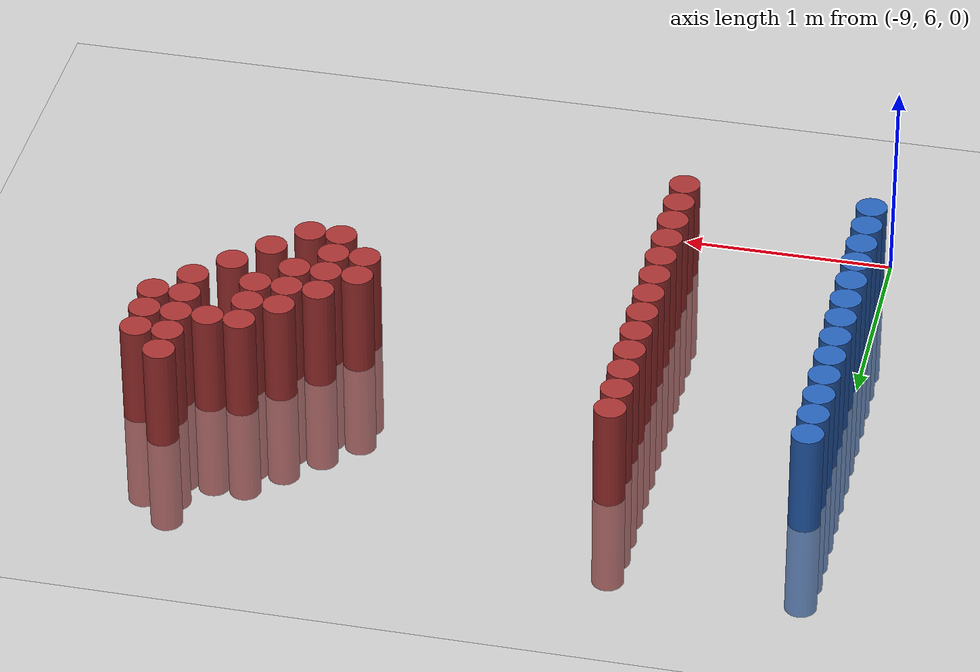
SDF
<sdf version="1.6">
 <world name="default">
  <model name="ground_plane">
   <static>1</static>
   <link name="link">
    <collision name="collision">
     <geometry><plane><normal>0 0 1</normal><size>100 100</size></plane></geometry>
     <surface><friction><ode><mu>100</mu><mu2>50</mu2></ode></friction></surface>
    </collision>
    <visual name="visual">
     <cast_shadows>0</cast_shadows>
     <geometry><plane><normal>0 0 1</normal><size>100 100</size></plane></geometry>
     <material>
      <script><uri>file://media/materials/scripts/gazebo.material</uri><name>Gazebo/Grey</name></script>
     </material>
    </visual>
   </link>
  </model>
  <model name="unit_cylinder_132">
   <static>1</static>
   <pose>-8.925000 6.225000 0.000000 0.000000 0.000000 0.000000</pose>
   <link name="link">
    <inertial>
     <mass>1</mass>
     <inertia><ixx>0.145833</ixx><ixy>0</ixy><ixz>0</ixz><iyy>0.145833</iyy><iyz>0</iyz><izz>0.125</izz></inertia>
    </inertial>
    <collision name="collision">
     <geometry><cylinder><radius>0.075000</radius><length>1</length></cylinder></geometry>
    </collision>
    <visual name="visual">
     <geometry><cylinder><radius>0.075000</radius><length>1</length></cylinder></geometry>
     <material>
      <ambient>0.152000 0.379000 0.720000 1</ambient>
      <diffuse>0.152000 0.379000 0.720000 1</diffuse>
     </material>
     <material>
      <script><name>Gazebo/Grey</name><uri>file://media/materials/scripts/gazebo.material</uri></script>
     </material>
    </visual>
   </link>
  </model>
  <model name="unit_cylinder_133">
   <static>1</static>
   <pose>-8.925000 6.375000 0.000000 0.000000 0.000000 0.000000</pose>
   <link name="link">
    <inertial>
     <mass>1</mass>
     <inertia><ixx>0.145833</ixx><ixy>0</ixy><ixz>0</ixz><iyy>0.145833</iyy><iyz>0</iyz><izz>0.125</izz></inertia>
    </inertial>
    <collision name="collision">
     <geometry><cylinder><radius>0.075000</radius><length>1</length></cylinder></geometry>
    </collision>
    <visual name="visual">
     <geometry><cylinder><radius>0.075000</radius><length>1</length></cylinder></geometry>
     <material>
      <ambient>0.152000 0.379000 0.720000 1</ambient>
      <diffuse>0.152000 0.379000 0.720000 1</diffuse>
     </material>
     <material>
      <script><name>Gazebo/Grey</name><uri>file://media/materials/scripts/gazebo.material</uri></script>
     </material>
    </visual>
   </link>
  </model>
  <model name="unit_cylinder_134">
   <static>1</static>
   <pose>-8.925000 6.525000 0.000000 0.000000 0.000000 0.000000</pose>
   <link name="link">
    <inertial>
     <mass>1</mass>
     <inertia><ixx>0.145833</ixx><ixy>0</ixy><ixz>0</ixz><iyy>0.145833</iyy><iyz>0</iyz><izz>0.125</izz></inertia>
    </inertial>
    <collision name="collision">
     <geometry><cylinder><radius>0.075000</radius><length>1</length></cylinder></geometry>
    </collision>
    <visual name="visual">
     <geometry><cylinder><radius>0.075000</radius><length>1</length></cylinder></geometry>
     <material>
      <ambient>0.152000 0.379000 0.720000 1</ambient>
      <diffuse>0.152000 0.379000 0.720000 1</diffuse>
     </material>
     <material>
      <script><name>Gazebo/Grey</name><uri>file://media/materials/scripts/gazebo.material</uri></script>
     </material>
    </visual>
   </link>
  </model>
  <model name="unit_cylinder_135">
   <static>1</static>
   <pose>-8.925000 6.675000 0.000000 0.000000 0.000000 0.000000</pose>
   <link name="link">
    <inertial>
     <mass>1</mass>
     <inertia><ixx>0.145833</ixx><ixy>0</ixy><ixz>0</ixz><iyy>0.145833</iyy><iyz>0</iyz><izz>0.125</izz></inertia>
    </inertial>
    <collision name="collision">
     <geometry><cylinder><radius>0.075000</radius><length>1</length></cylinder></geometry>
    </collision>
    <visual name="visual">
     <geometry><cylinder><radius>0.075000</radius><length>1</length></cylinder></geometry>
     <material>
      <ambient>0.152000 0.379000 0.720000 1</ambient>
      <diffuse>0.152000 0.379000 0.720000 1</diffuse>
     </material>
     <material>
      <script><name>Gazebo/Grey</name><uri>file://media/materials/scripts/gazebo.material</uri></script>
     </material>
    </visual>
   </link>
  </model>
  <model name="unit_cylinder_136">
   <static>1</static>
   <pose>-8.925000 6.825000 0.000000 0.000000 0.000000 0.000000</pose>
   <link name="link">
    <inertial>
     <mass>1</mass>
     <inertia><ixx>0.145833</ixx><ixy>0</ixy><ixz>0</ixz><iyy>0.145833</iyy><iyz>0</iyz><izz>0.125</izz></inertia>
    </inertial>
    <collision name="collision">
     <geometry><cylinder><radius>0.075000</radius><length>1</length></cylinder></geometry>
    </collision>
    <visual name="visual">
     <geometry><cylinder><radius>0.075000</radius><length>1</length></cylinder></geometry>
     <material>
      <ambient>0.152000 0.379000 0.720000 1</ambient>
      <diffuse>0.152000 0.379000 0.720000 1</diffuse>
     </material>
     <material>
      <script><name>Gazebo/Grey</name><uri>file://media/materials/scripts/gazebo.material</uri></script>
     </material>
    </visual>
   </link>
  </model>
  <model name="unit_cylinder_137">
   <static>1</static>
   <pose>-8.925000 6.975000 0.000000 0.000000 0.000000 0.000000</pose>
   <link name="link">
    <inertial>
     <mass>1</mass>
     <inertia><ixx>0.145833</ixx><ixy>0</ixy><ixz>0</ixz><iyy>0.145833</iyy><iyz>0</iyz><izz>0.125</izz></inertia>
    </inertial>
    <collision name="collision">
     <geometry><cylinder><radius>0.075000</radius><length>1</length></cylinder></geometry>
    </collision>
    <visual name="visual">
     <geometry><cylinder><radius>0.075000</radius><length>1</length></cylinder></geometry>
     <material>
      <ambient>0.152000 0.379000 0.720000 1</ambient>
      <diffuse>0.152000 0.379000 0.720000 1</diffuse>
     </material>
     <material>
      <script><name>Gazebo/Grey</name><uri>file://media/materials/scripts/gazebo.material</uri></script>
     </material>
    </visual>
   </link>
  </model>
  <model name="unit_cylinder_138">
   <static>1</static>
   <pose>-8.925000 7.125000 0.000000 0.000000 0.000000 0.000000</pose>
   <link name="link">
    <inertial>
     <mass>1</mass>
     <inertia><ixx>0.145833</ixx><ixy>0</ixy><ixz>0</ixz><iyy>0.145833</iyy><iyz>0</iyz><izz>0.125</izz></inertia>
    </inertial>
    <collision name="collision">
     <geometry><cylinder><radius>0.075000</radius><length>1</length></cylinder></geometry>
    </collision>
    <visual name="visual">
     <geometry><cylinder><radius>0.075000</radius><length>1</length></cylinder></geometry>
     <material>
      <ambient>0.152000 0.379000 0.720000 1</ambient>
      <diffuse>0.152000 0.379000 0.720000 1</diffuse>
     </material>
     <material>
      <script><name>Gazebo/Grey</name><uri>file://media/materials/scripts/gazebo.material</uri></script>
     </material>
    </visual>
   </link>
  </model>
  <model name="unit_cylinder_139">
   <static>1</static>
   <pose>-8.925000 7.275000 0.000000 0.000000 0.000000 0.000000</pose>
   <link name="link">
    <inertial>
     <mass>1</mass>
     <inertia><ixx>0.145833</ixx><ixy>0</ixy><ixz>0</ixz><iyy>0.145833</iyy><iyz>0</iyz><izz>0.125</izz></inertia>
    </inertial>
    <collision name="collision">
     <geometry><cylinder><radius>0.075000</radius><length>1</length></cylinder></geometry>
    </collision>
    <visual name="visual">
     <geometry><cylinder><radius>0.075000</radius><length>1</length></cylinder></geometry>
     <material>
      <ambient>0.152000 0.379000 0.720000 1</ambient>
      <diffuse>0.152000 0.379000 0.720000 1</diffuse>
     </material>
     <material>
      <script><name>Gazebo/Grey</name><uri>file://media/materials/scripts/gazebo.material</uri></script>
     </material>
    </visual>
   </link>
  </model>
  <model name="unit_cylinder_140">
   <static>1</static>
   <pose>-8.925000 7.425000 0.000000 0.000000 0.000000 0.000000</pose>
   <link name="link">
    <inertial>
     <mass>1</mass>
     <inertia><ixx>0.145833</ixx><ixy>0</ixy><ixz>0</ixz><iyy>0.145833</iyy><iyz>0</iyz><izz>0.125</izz></inertia>
    </inertial>
    <collision name="collision">
     <geometry><cylinder><radius>0.075000</radius><length>1</length></cylinder></geometry>
    </collision>
    <visual name="visual">
     <geometry><cylinder><radius>0.075000</radius><length>1</length></cylinder></geometry>
     <material>
      <ambient>0.152000 0.379000 0.720000 1</ambient>
      <diffuse>0.152000 0.379000 0.720000 1</diffuse>
     </material>
     <material>
      <script><name>Gazebo/Grey</name><uri>file://media/materials/scripts/gazebo.material</uri></script>
     </material>
    </visual>
   </link>
  </model>
  <model name="unit_cylinder_141">
   <static>1</static>
   <pose>-8.925000 7.575000 0.000000 0.000000 0.000000 0.000000</pose>
   <link name="link">
    <inertial>
     <mass>1</mass>
     <inertia><ixx>0.145833</ixx><ixy>0</ixy><ixz>0</ixz><iyy>0.145833</iyy><iyz>0</iyz><izz>0.125</izz></inertia>
    </inertial>
    <collision name="collision">
     <geometry><cylinder><radius>0.075000</radius><length>1</length></cylinder></geometry>
    </collision>
    <visual name="visual">
     <geometry><cylinder><radius>0.075000</radius><length>1</length></cylinder></geometry>
     <material>
      <ambient>0.152000 0.379000 0.720000 1</ambient>
      <diffuse>0.152000 0.379000 0.720000 1</diffuse>
     </material>
     <material>
      <script><name>Gazebo/Grey</name><uri>file://media/materials/scripts/gazebo.material</uri></script>
     </material>
    </visual>
   </link>
  </model>
  <model name="unit_cylinder_142">
   <static>1</static>
   <pose>-8.925000 7.725000 0.000000 0.000000 0.000000 0.000000</pose>
   <link name="link">
    <inertial>
     <mass>1</mass>
     <inertia><ixx>0.145833</ixx><ixy>0</ixy><ixz>0</ixz><iyy>0.145833</iyy><iyz>0</iyz><izz>0.125</izz></inertia>
    </inertial>
    <collision name="collision">
     <geometry><cylinder><radius>0.075000</radius><length>1</length></cylinder></geometry>
    </collision>
    <visual name="visual">
     <geometry><cylinder><radius>0.075000</radius><length>1</length></cylinder></geometry>
     <material>
      <ambient>0.152000 0.379000 0.720000 1</ambient>
      <diffuse>0.152000 0.379000 0.720000 1</diffuse>
     </material>
     <material>
      <script><name>Gazebo/Grey</name><uri>file://media/materials/scripts/gazebo.material</uri></script>
     </material>
    </visual>
   </link>
  </model>
  <model name="unit_cylinder_143">
   <static>1</static>
   <pose>-8.925000 7.875000 0.000000 0.000000 0.000000 0.000000</pose>
   <link name="link">
    <inertial>
     <mass>1</mass>
     <inertia><ixx>0.145833</ixx><ixy>0</ixy><ixz>0</ixz><iyy>0.145833</iyy><iyz>0</iyz><izz>0.125</izz></inertia>
    </inertial>
    <collision name="collision">
     <geometry><cylinder><radius>0.075000</radius><length>1</length></cylinder></geometry>
    </collision>
    <visual name="visual">
     <geometry><cylinder><radius>0.075000</radius><length>1</length></cylinder></geometry>
     <material>
      <ambient>0.152000 0.379000 0.720000 1</ambient>
      <diffuse>0.152000 0.379000 0.720000 1</diffuse>
     </material>
     <material>
      <script><name>Gazebo/Grey</name><uri>file://media/materials/scripts/gazebo.material</uri></script>
     </material>
    </visual>
   </link>
  </model>
  <model name="unit_cylinder_144">
   <static>1</static>
   <pose>-8.925000 8.025000 0.000000 0.000000 0.000000 0.000000</pose>
   <link name="link">
    <inertial>
     <mass>1</mass>
     <inertia><ixx>0.145833</ixx><ixy>0</ixy><ixz>0</ixz><iyy>0.145833</iyy><iyz>0</iyz><izz>0.125</izz></inertia>
    </inertial>
    <collision name="collision">
     <geometry><cylinder><radius>0.075000</radius><length>1</length></cylinder></geometry>
    </collision>
    <visual name="visual">
     <geometry><cylinder><radius>0.075000</radius><length>1</length></cylinder></geometry>
     <material>
      <ambient>0.152000 0.379000 0.720000 1</ambient>
      <diffuse>0.152000 0.379000 0.720000 1</diffuse>
     </material>
     <material>
      <script><name>Gazebo/Grey</name><uri>file://media/materials/scripts/gazebo.material</uri></script>
     </material>
    </visual>
   </link>
  </model>
  <model name="unit_cylinder_169">
   <static>1</static>
   <pose>-8.025000 6.225000 0.000000 0.000000 0.000000 0.000000</pose>
   <link name="link">
    <inertial>
     <mass>1</mass>
     <inertia><ixx>0.145833</ixx><ixy>0</ixy><ixz>0</ixz><iyy>0.145833</iyy><iyz>0</iyz><izz>0.125</izz></inertia>
    </inertial>
    <collision name="collision">
     <geometry><cylinder><radius>0.075000</radius><length>1</length></cylinder></geometry>
    </collision>
    <visual name="visual">
     <geometry><cylinder><radius>0.075000</radius><length>1</length></cylinder></geometry>
     <material>
      <ambient>0.648000 0.192000 0.192000 1</ambient>
      <diffuse>0.648000 0.192000 0.192000 1</diffuse>
     </material>
     <material>
      <script><name>Gazebo/Grey</name><uri>file://media/materials/scripts/gazebo.material</uri></script>
     </material>
    </visual>
   </link>
  </model>
  <model name="unit_cylinder_170">
   <static>1</static>
   <pose>-8.025000 6.375000 0.000000 0.000000 0.000000 0.000000</pose>
   <link name="link">
    <inertial>
     <mass>1</mass>
     <inertia><ixx>0.145833</ixx><ixy>0</ixy><ixz>0</ixz><iyy>0.145833</iyy><iyz>0</iyz><izz>0.125</izz></inertia>
    </inertial>
    <collision name="collision">
     <geometry><cylinder><radius>0.075000</radius><length>1</length></cylinder></geometry>
    </collision>
    <visual name="visual">
     <geometry><cylinder><radius>0.075000</radius><length>1</length></cylinder></geometry>
     <material>
      <ambient>0.648000 0.192000 0.192000 1</ambient>
      <diffuse>0.648000 0.192000 0.192000 1</diffuse>
     </material>
     <material>
      <script><name>Gazebo/Grey</name><uri>file://media/materials/scripts/gazebo.material</uri></script>
     </material>
    </visual>
   </link>
  </model>
  <model name="unit_cylinder_171">
   <static>1</static>
   <pose>-8.025000 6.525000 0.000000 0.000000 0.000000 0.000000</pose>
   <link name="link">
    <inertial>
     <mass>1</mass>
     <inertia><ixx>0.145833</ixx><ixy>0</ixy><ixz>0</ixz><iyy>0.145833</iyy><iyz>0</iyz><izz>0.125</izz></inertia>
    </inertial>
    <collision name="collision">
     <geometry><cylinder><radius>0.075000</radius><length>1</length></cylinder></geometry>
    </collision>
    <visual name="visual">
     <geometry><cylinder><radius>0.075000</radius><length>1</length></cylinder></geometry>
     <material>
      <ambient>0.648000 0.192000 0.192000 1</ambient>
      <diffuse>0.648000 0.192000 0.192000 1</diffuse>
     </material>
     <material>
      <script><name>Gazebo/Grey</name><uri>file://media/materials/scripts/gazebo.material</uri></script>
     </material>
    </visual>
   </link>
  </model>
  <model name="unit_cylinder_172">
   <static>1</static>
   <pose>-8.025000 6.675000 0.000000 0.000000 0.000000 0.000000</pose>
   <link name="link">
    <inertial>
     <mass>1</mass>
     <inertia><ixx>0.145833</ixx><ixy>0</ixy><ixz>0</ixz><iyy>0.145833</iyy><iyz>0</iyz><izz>0.125</izz></inertia>
    </inertial>
    <collision name="collision">
     <geometry><cylinder><radius>0.075000</radius><length>1</length></cylinder></geometry>
    </collision>
    <visual name="visual">
     <geometry><cylinder><radius>0.075000</radius><length>1</length></cylinder></geometry>
     <material>
      <ambient>0.648000 0.192000 0.192000 1</ambient>
      <diffuse>0.648000 0.192000 0.192000 1</diffuse>
     </material>
     <material>
      <script><name>Gazebo/Grey</name><uri>file://media/materials/scripts/gazebo.material</uri></script>
     </material>
    </visual>
   </link>
  </model>
  <model name="unit_cylinder_173">
   <static>1</static>
   <pose>-8.025000 6.825000 0.000000 0.000000 0.000000 0.000000</pose>
   <link name="link">
    <inertial>
     <mass>1</mass>
     <inertia><ixx>0.145833</ixx><ixy>0</ixy><ixz>0</ixz><iyy>0.145833</iyy><iyz>0</iyz><izz>0.125</izz></inertia>
    </inertial>
    <collision name="collision">
     <geometry><cylinder><radius>0.075000</radius><length>1</length></cylinder></geometry>
    </collision>
    <visual name="visual">
     <geometry><cylinder><radius>0.075000</radius><length>1</length></cylinder></geometry>
     <material>
      <ambient>0.648000 0.192000 0.192000 1</ambient>
      <diffuse>0.648000 0.192000 0.192000 1</diffuse>
     </material>
     <material>
      <script><name>Gazebo/Grey</name><uri>file://media/materials/scripts/gazebo.material</uri></script>
     </material>
    </visual>
   </link>
  </model>
  <model name="unit_cylinder_174">
   <static>1</static>
   <pose>-8.025000 6.975000 0.000000 0.000000 0.000000 0.000000</pose>
   <link name="link">
    <inertial>
     <mass>1</mass>
     <inertia><ixx>0.145833</ixx><ixy>0</ixy><ixz>0</ixz><iyy>0.145833</iyy><iyz>0</iyz><izz>0.125</izz></inertia>
    </inertial>
    <collision name="collision">
     <geometry><cylinder><radius>0.075000</radius><length>1</length></cylinder></geometry>
    </collision>
    <visual name="visual">
     <geometry><cylinder><radius>0.075000</radius><length>1</length></cylinder></geometry>
     <material>
      <ambient>0.648000 0.192000 0.192000 1</ambient>
      <diffuse>0.648000 0.192000 0.192000 1</diffuse>
     </material>
     <material>
      <script><name>Gazebo/Grey</name><uri>file://media/materials/scripts/gazebo.material</uri></script>
     </material>
    </visual>
   </link>
  </model>
  <model name="unit_cylinder_175">
   <static>1</static>
   <pose>-8.025000 7.125000 0.000000 0.000000 0.000000 0.000000</pose>
   <link name="link">
    <inertial>
     <mass>1</mass>
     <inertia><ixx>0.145833</ixx><ixy>0</ixy><ixz>0</ixz><iyy>0.145833</iyy><iyz>0</iyz><izz>0.125</izz></inertia>
    </inertial>
    <collision name="collision">
     <geometry><cylinder><radius>0.075000</radius><length>1</length></cylinder></geometry>
    </collision>
    <visual name="visual">
     <geometry><cylinder><radius>0.075000</radius><length>1</length></cylinder></geometry>
     <material>
      <ambient>0.648000 0.192000 0.192000 1</ambient>
      <diffuse>0.648000 0.192000 0.192000 1</diffuse>
     </material>
     <material>
      <script><name>Gazebo/Grey</name><uri>file://media/materials/scripts/gazebo.material</uri></script>
     </material>
    </visual>
   </link>
  </model>
  <model name="unit_cylinder_176">
   <static>1</static>
   <pose>-8.025000 7.275000 0.000000 0.000000 0.000000 0.000000</pose>
   <link name="link">
    <inertial>
     <mass>1</mass>
     <inertia><ixx>0.145833</ixx><ixy>0</ixy><ixz>0</ixz><iyy>0.145833</iyy><iyz>0</iyz><izz>0.125</izz></inertia>
    </inertial>
    <collision name="collision">
     <geometry><cylinder><radius>0.075000</radius><length>1</length></cylinder></geometry>
    </collision>
    <visual name="visual">
     <geometry><cylinder><radius>0.075000</radius><length>1</length></cylinder></geometry>
     <material>
      <ambient>0.648000 0.192000 0.192000 1</ambient>
      <diffuse>0.648000 0.192000 0.192000 1</diffuse>
     </material>
     <material>
      <script><name>Gazebo/Grey</name><uri>file://media/materials/scripts/gazebo.material</uri></script>
     </material>
    </visual>
   </link>
  </model>
  <model name="unit_cylinder_177">
   <static>1</static>
   <pose>-8.025000 7.425000 0.000000 0.000000 0.000000 0.000000</pose>
   <link name="link">
    <inertial>
     <mass>1</mass>
     <inertia><ixx>0.145833</ixx><ixy>0</ixy><ixz>0</ixz><iyy>0.145833</iyy><iyz>0</iyz><izz>0.125</izz></inertia>
    </inertial>
    <collision name="collision">
     <geometry><cylinder><radius>0.075000</radius><length>1</length></cylinder></geometry>
    </collision>
    <visual name="visual">
     <geometry><cylinder><radius>0.075000</radius><length>1</length></cylinder></geometry>
     <material>
      <ambient>0.648000 0.192000 0.192000 1</ambient>
      <diffuse>0.648000 0.192000 0.192000 1</diffuse>
     </material>
     <material>
      <script><name>Gazebo/Grey</name><uri>file://media/materials/scripts/gazebo.material</uri></script>
     </material>
    </visual>
   </link>
  </model>
  <model name="unit_cylinder_178">
   <static>1</static>
   <pose>-8.025000 7.575000 0.000000 0.000000 0.000000 0.000000</pose>
   <link name="link">
    <inertial>
     <mass>1</mass>
     <inertia><ixx>0.145833</ixx><ixy>0</ixy><ixz>0</ixz><iyy>0.145833</iyy><iyz>0</iyz><izz>0.125</izz></inertia>
    </inertial>
    <collision name="collision">
     <geometry><cylinder><radius>0.075000</radius><length>1</length></cylinder></geometry>
    </collision>
    <visual name="visual">
     <geometry><cylinder><radius>0.075000</radius><length>1</length></cylinder></geometry>
     <material>
      <ambient>0.648000 0.192000 0.192000 1</ambient>
      <diffuse>0.648000 0.192000 0.192000 1</diffuse>
     </material>
     <material>
      <script><name>Gazebo/Grey</name><uri>file://media/materials/scripts/gazebo.material</uri></script>
     </material>
    </visual>
   </link>
  </model>
  <model name="unit_cylinder_179">
   <static>1</static>
   <pose>-8.025000 7.725000 0.000000 0.000000 0.000000 0.000000</pose>
   <link name="link">
    <inertial>
     <mass>1</mass>
     <inertia><ixx>0.145833</ixx><ixy>0</ixy><ixz>0</ixz><iyy>0.145833</iyy><iyz>0</iyz><izz>0.125</izz></inertia>
    </inertial>
    <collision name="collision">
     <geometry><cylinder><radius>0.075000</radius><length>1</length></cylinder></geometry>
    </collision>
    <visual name="visual">
     <geometry><cylinder><radius>0.075000</radius><length>1</length></cylinder></geometry>
     <material>
      <ambient>0.648000 0.192000 0.192000 1</ambient>
      <diffuse>0.648000 0.192000 0.192000 1</diffuse>
     </material>
     <material>
      <script><name>Gazebo/Grey</name><uri>file://media/materials/scripts/gazebo.material</uri></script>
     </material>
    </visual>
   </link>
  </model>
  <model name="unit_cylinder_180">
   <static>1</static>
   <pose>-8.025000 7.875000 0.000000 0.000000 0.000000 0.000000</pose>
   <link name="link">
    <inertial>
     <mass>1</mass>
     <inertia><ixx>0.145833</ixx><ixy>0</ixy><ixz>0</ixz><iyy>0.145833</iyy><iyz>0</iyz><izz>0.125</izz></inertia>
    </inertial>
    <collision name="collision">
     <geometry><cylinder><radius>0.075000</radius><length>1</length></cylinder></geometry>
    </collision>
    <visual name="visual">
     <geometry><cylinder><radius>0.075000</radius><length>1</length></cylinder></geometry>
     <material>
      <ambient>0.648000 0.192000 0.192000 1</ambient>
      <diffuse>0.648000 0.192000 0.192000 1</diffuse>
     </material>
     <material>
      <script><name>Gazebo/Grey</name><uri>file://media/materials/scripts/gazebo.material</uri></script>
     </material>
    </visual>
   </link>
  </model>
  <model name="unit_cylinder_181">
   <static>1</static>
   <pose>-8.025000 8.025000 0.000000 0.000000 0.000000 0.000000</pose>
   <link name="link">
    <inertial>
     <mass>1</mass>
     <inertia><ixx>0.145833</ixx><ixy>0</ixy><ixz>0</ixz><iyy>0.145833</iyy><iyz>0</iyz><izz>0.125</izz></inertia>
    </inertial>
    <collision name="collision">
     <geometry><cylinder><radius>0.075000</radius><length>1</length></cylinder></geometry>
    </collision>
    <visual name="visual">
     <geometry><cylinder><radius>0.075000</radius><length>1</length></cylinder></geometry>
     <material>
      <ambient>0.648000 0.192000 0.192000 1</ambient>
      <diffuse>0.648000 0.192000 0.192000 1</diffuse>
     </material>
     <material>
      <script><name>Gazebo/Grey</name><uri>file://media/materials/scripts/gazebo.material</uri></script>
     </material>
    </visual>
   </link>
  </model>
  <model name="unit_cylinder_205">
   <static>1</static>
   <pose>-6.675000 7.125000 0.000000 0.000000 0.000000 0.000000</pose>
   <link name="link">
    <inertial>
     <mass>1</mass>
     <inertia><ixx>0.145833</ixx><ixy>0</ixy><ixz>0</ixz><iyy>0.145833</iyy><iyz>0</iyz><izz>0.125</izz></inertia>
    </inertial>
    <collision name="collision">
     <geometry><cylinder><radius>0.075000</radius><length>1</length></cylinder></geometry>
    </collision>
    <visual name="visual">
     <geometry><cylinder><radius>0.075000</radius><length>1</length></cylinder></geometry>
     <material>
      <ambient>0.648000 0.192000 0.192000 1</ambient>
      <diffuse>0.648000 0.192000 0.192000 1</diffuse>
     </material>
     <material>
      <script><name>Gazebo/Grey</name><uri>file://media/materials/scripts/gazebo.material</uri></script>
     </material>
    </visual>
   </link>
  </model>
  <model name="unit_cylinder_206">
   <static>1</static>
   <pose>-6.675000 7.275000 0.000000 0.000000 0.000000 0.000000</pose>
   <link name="link">
    <inertial>
     <mass>1</mass>
     <inertia><ixx>0.145833</ixx><ixy>0</ixy><ixz>0</ixz><iyy>0.145833</iyy><iyz>0</iyz><izz>0.125</izz></inertia>
    </inertial>
    <collision name="collision">
     <geometry><cylinder><radius>0.075000</radius><length>1</length></cylinder></geometry>
    </collision>
    <visual name="visual">
     <geometry><cylinder><radius>0.075000</radius><length>1</length></cylinder></geometry>
     <material>
      <ambient>0.648000 0.192000 0.192000 1</ambient>
      <diffuse>0.648000 0.192000 0.192000 1</diffuse>
     </material>
     <material>
      <script><name>Gazebo/Grey</name><uri>file://media/materials/scripts/gazebo.material</uri></script>
     </material>
    </visual>
   </link>
  </model>
  <model name="unit_cylinder_210">
   <static>1</static>
   <pose>-6.525000 6.975000 0.000000 0.000000 0.000000 0.000000</pose>
   <link name="link">
    <inertial>
     <mass>1</mass>
     <inertia><ixx>0.145833</ixx><ixy>0</ixy><ixz>0</ixz><iyy>0.145833</iyy><iyz>0</iyz><izz>0.125</izz></inertia>
    </inertial>
    <collision name="collision">
     <geometry><cylinder><radius>0.075000</radius><length>1</length></cylinder></geometry>
    </collision>
    <visual name="visual">
     <geometry><cylinder><radius>0.075000</radius><length>1</length></cylinder></geometry>
     <material>
      <ambient>0.648000 0.192000 0.192000 1</ambient>
      <diffuse>0.648000 0.192000 0.192000 1</diffuse>
     </material>
     <material>
      <script><name>Gazebo/Grey</name><uri>file://media/materials/scripts/gazebo.material</uri></script>
     </material>
    </visual>
   </link>
  </model>
  <model name="unit_cylinder_211">
   <static>1</static>
   <pose>-6.525000 7.125000 0.000000 0.000000 0.000000 0.000000</pose>
   <link name="link">
    <inertial>
     <mass>1</mass>
     <inertia><ixx>0.145833</ixx><ixy>0</ixy><ixz>0</ixz><iyy>0.145833</iyy><iyz>0</iyz><izz>0.125</izz></inertia>
    </inertial>
    <collision name="collision">
     <geometry><cylinder><radius>0.075000</radius><length>1</length></cylinder></geometry>
    </collision>
    <visual name="visual">
     <geometry><cylinder><radius>0.075000</radius><length>1</length></cylinder></geometry>
     <material>
      <ambient>0.648000 0.192000 0.192000 1</ambient>
      <diffuse>0.648000 0.192000 0.192000 1</diffuse>
     </material>
     <material>
      <script><name>Gazebo/Grey</name><uri>file://media/materials/scripts/gazebo.material</uri></script>
     </material>
    </visual>
   </link>
  </model>
  <model name="unit_cylinder_212">
   <static>1</static>
   <pose>-6.525000 7.275000 0.000000 0.000000 0.000000 0.000000</pose>
   <link name="link">
    <inertial>
     <mass>1</mass>
     <inertia><ixx>0.145833</ixx><ixy>0</ixy><ixz>0</ixz><iyy>0.145833</iyy><iyz>0</iyz><izz>0.125</izz></inertia>
    </inertial>
    <collision name="collision">
     <geometry><cylinder><radius>0.075000</radius><length>1</length></cylinder></geometry>
    </collision>
    <visual name="visual">
     <geometry><cylinder><radius>0.075000</radius><length>1</length></cylinder></geometry>
     <material>
      <ambient>0.648000 0.192000 0.192000 1</ambient>
      <diffuse>0.648000 0.192000 0.192000 1</diffuse>
     </material>
     <material>
      <script><name>Gazebo/Grey</name><uri>file://media/materials/scripts/gazebo.material</uri></script>
     </material>
    </visual>
   </link>
  </model>
  <model name="unit_cylinder_213">
   <static>1</static>
   <pose>-6.525000 7.425000 0.000000 0.000000 0.000000 0.000000</pose>
   <link name="link">
    <inertial>
     <mass>1</mass>
     <inertia><ixx>0.145833</ixx><ixy>0</ixy><ixz>0</ixz><iyy>0.145833</iyy><iyz>0</iyz><izz>0.125</izz></inertia>
    </inertial>
    <collision name="collision">
     <geometry><cylinder><radius>0.075000</radius><length>1</length></cylinder></geometry>
    </collision>
    <visual name="visual">
     <geometry><cylinder><radius>0.075000</radius><length>1</length></cylinder></geometry>
     <material>
      <ambient>0.648000 0.192000 0.192000 1</ambient>
      <diffuse>0.648000 0.192000 0.192000 1</diffuse>
     </material>
     <material>
      <script><name>Gazebo/Grey</name><uri>file://media/materials/scripts/gazebo.material</uri></script>
     </material>
    </visual>
   </link>
  </model>
  <model name="unit_cylinder_217">
   <static>1</static>
   <pose>-6.375000 6.975000 0.000000 0.000000 0.000000 0.000000</pose>
   <link name="link">
    <inertial>
     <mass>1</mass>
     <inertia><ixx>0.145833</ixx><ixy>0</ixy><ixz>0</ixz><iyy>0.145833</iyy><iyz>0</iyz><izz>0.125</izz></inertia>
    </inertial>
    <collision name="collision">
     <geometry><cylinder><radius>0.075000</radius><length>1</length></cylinder></geometry>
    </collision>
    <visual name="visual">
     <geometry><cylinder><radius>0.075000</radius><length>1</length></cylinder></geometry>
     <material>
      <ambient>0.648000 0.192000 0.192000 1</ambient>
      <diffuse>0.648000 0.192000 0.192000 1</diffuse>
     </material>
     <material>
      <script><name>Gazebo/Grey</name><uri>file://media/materials/scripts/gazebo.material</uri></script>
     </material>
    </visual>
   </link>
  </model>
  <model name="unit_cylinder_218">
   <static>1</static>
   <pose>-6.375000 7.275000 0.000000 0.000000 0.000000 0.000000</pose>
   <link name="link">
    <inertial>
     <mass>1</mass>
     <inertia><ixx>0.145833</ixx><ixy>0</ixy><ixz>0</ixz><iyy>0.145833</iyy><iyz>0</iyz><izz>0.125</izz></inertia>
    </inertial>
    <collision name="collision">
     <geometry><cylinder><radius>0.075000</radius><length>1</length></cylinder></geometry>
    </collision>
    <visual name="visual">
     <geometry><cylinder><radius>0.075000</radius><length>1</length></cylinder></geometry>
     <material>
      <ambient>0.648000 0.192000 0.192000 1</ambient>
      <diffuse>0.648000 0.192000 0.192000 1</diffuse>
     </material>
     <material>
      <script><name>Gazebo/Grey</name><uri>file://media/materials/scripts/gazebo.material</uri></script>
     </material>
    </visual>
   </link>
  </model>
  <model name="unit_cylinder_219">
   <static>1</static>
   <pose>-6.375000 7.425000 0.000000 0.000000 0.000000 0.000000</pose>
   <link name="link">
    <inertial>
     <mass>1</mass>
     <inertia><ixx>0.145833</ixx><ixy>0</ixy><ixz>0</ixz><iyy>0.145833</iyy><iyz>0</iyz><izz>0.125</izz></inertia>
    </inertial>
    <collision name="collision">
     <geometry><cylinder><radius>0.075000</radius><length>1</length></cylinder></geometry>
    </collision>
    <visual name="visual">
     <geometry><cylinder><radius>0.075000</radius><length>1</length></cylinder></geometry>
     <material>
      <ambient>0.648000 0.192000 0.192000 1</ambient>
      <diffuse>0.648000 0.192000 0.192000 1</diffuse>
     </material>
     <material>
      <script><name>Gazebo/Grey</name><uri>file://media/materials/scripts/gazebo.material</uri></script>
     </material>
    </visual>
   </link>
  </model>
  <model name="unit_cylinder_220">
   <static>1</static>
   <pose>-6.375000 7.575000 0.000000 0.000000 0.000000 0.000000</pose>
   <link name="link">
    <inertial>
     <mass>1</mass>
     <inertia><ixx>0.145833</ixx><ixy>0</ixy><ixz>0</ixz><iyy>0.145833</iyy><iyz>0</iyz><izz>0.125</izz></inertia>
    </inertial>
    <collision name="collision">
     <geometry><cylinder><radius>0.075000</radius><length>1</length></cylinder></geometry>
    </collision>
    <visual name="visual">
     <geometry><cylinder><radius>0.075000</radius><length>1</length></cylinder></geometry>
     <material>
      <ambient>0.648000 0.192000 0.192000 1</ambient>
      <diffuse>0.648000 0.192000 0.192000 1</diffuse>
     </material>
     <material>
      <script><name>Gazebo/Grey</name><uri>file://media/materials/scripts/gazebo.material</uri></script>
     </material>
    </visual>
   </link>
  </model>
  <model name="unit_cylinder_224">
   <static>1</static>
   <pose>-6.225000 7.125000 0.000000 0.000000 0.000000 0.000000</pose>
   <link name="link">
    <inertial>
     <mass>1</mass>
     <inertia><ixx>0.145833</ixx><ixy>0</ixy><ixz>0</ixz><iyy>0.145833</iyy><iyz>0</iyz><izz>0.125</izz></inertia>
    </inertial>
    <collision name="collision">
     <geometry><cylinder><radius>0.075000</radius><length>1</length></cylinder></geometry>
    </collision>
    <visual name="visual">
     <geometry><cylinder><radius>0.075000</radius><length>1</length></cylinder></geometry>
     <material>
      <ambient>0.648000 0.192000 0.192000 1</ambient>
      <diffuse>0.648000 0.192000 0.192000 1</diffuse>
     </material>
     <material>
      <script><name>Gazebo/Grey</name><uri>file://media/materials/scripts/gazebo.material</uri></script>
     </material>
    </visual>
   </link>
  </model>
  <model name="unit_cylinder_225">
   <static>1</static>
   <pose>-6.225000 7.425000 0.000000 0.000000 0.000000 0.000000</pose>
   <link name="link">
    <inertial>
     <mass>1</mass>
     <inertia><ixx>0.145833</ixx><ixy>0</ixy><ixz>0</ixz><iyy>0.145833</iyy><iyz>0</iyz><izz>0.125</izz></inertia>
    </inertial>
    <collision name="collision">
     <geometry><cylinder><radius>0.075000</radius><length>1</length></cylinder></geometry>
    </collision>
    <visual name="visual">
     <geometry><cylinder><radius>0.075000</radius><length>1</length></cylinder></geometry>
     <material>
      <ambient>0.648000 0.192000 0.192000 1</ambient>
      <diffuse>0.648000 0.192000 0.192000 1</diffuse>
     </material>
     <material>
      <script><name>Gazebo/Grey</name><uri>file://media/materials/scripts/gazebo.material</uri></script>
     </material>
    </visual>
   </link>
  </model>
  <model name="unit_cylinder_226">
   <static>1</static>
   <pose>-6.225000 7.575000 0.000000 0.000000 0.000000 0.000000</pose>
   <link name="link">
    <inertial>
     <mass>1</mass>
     <inertia><ixx>0.145833</ixx><ixy>0</ixy><ixz>0</ixz><iyy>0.145833</iyy><iyz>0</iyz><izz>0.125</izz></inertia>
    </inertial>
    <collision name="collision">
     <geometry><cylinder><radius>0.075000</radius><length>1</length></cylinder></geometry>
    </collision>
    <visual name="visual">
     <geometry><cylinder><radius>0.075000</radius><length>1</length></cylinder></geometry>
     <material>
      <ambient>0.648000 0.192000 0.192000 1</ambient>
      <diffuse>0.648000 0.192000 0.192000 1</diffuse>
     </material>
     <material>
      <script><name>Gazebo/Grey</name><uri>file://media/materials/scripts/gazebo.material</uri></script>
     </material>
    </visual>
   </link>
  </model>
  <model name="unit_cylinder_227">
   <static>1</static>
   <pose>-6.225000 7.725000 0.000000 0.000000 0.000000 0.000000</pose>
   <link name="link">
    <inertial>
     <mass>1</mass>
     <inertia><ixx>0.145833</ixx><ixy>0</ixy><ixz>0</ixz><iyy>0.145833</iyy><iyz>0</iyz><izz>0.125</izz></inertia>
    </inertial>
    <collision name="collision">
     <geometry><cylinder><radius>0.075000</radius><length>1</length></cylinder></geometry>
    </collision>
    <visual name="visual">
     <geometry><cylinder><radius>0.075000</radius><length>1</length></cylinder></geometry>
     <material>
      <ambient>0.648000 0.192000 0.192000 1</ambient>
      <diffuse>0.648000 0.192000 0.192000 1</diffuse>
     </material>
     <material>
      <script><name>Gazebo/Grey</name><uri>file://media/materials/scripts/gazebo.material</uri></script>
     </material>
    </visual>
   </link>
  </model>
  <model name="unit_cylinder_230">
   <static>1</static>
   <pose>-6.075000 7.275000 0.000000 0.000000 0.000000 0.000000</pose>
   <link name="link">
    <inertial>
     <mass>1</mass>
     <inertia><ixx>0.145833</ixx><ixy>0</ixy><ixz>0</ixz><iyy>0.145833</iyy><iyz>0</iyz><izz>0.125</izz></inertia>
    </inertial>
    <collision name="collision">
     <geometry><cylinder><radius>0.075000</radius><length>1</length></cylinder></geometry>
    </collision>
    <visual name="visual">
     <geometry><cylinder><radius>0.075000</radius><length>1</length></cylinder></geometry>
     <material>
      <ambient>0.648000 0.192000 0.192000 1</ambient>
      <diffuse>0.648000 0.192000 0.192000 1</diffuse>
     </material>
     <material>
      <script><name>Gazebo/Grey</name><uri>file://media/materials/scripts/gazebo.material</uri></script>
     </material>
    </visual>
   </link>
  </model>
  <model name="unit_cylinder_231">
   <static>1</static>
   <pose>-6.075000 7.725000 0.000000 0.000000 0.000000 0.000000</pose>
   <link name="link">
    <inertial>
     <mass>1</mass>
     <inertia><ixx>0.145833</ixx><ixy>0</ixy><ixz>0</ixz><iyy>0.145833</iyy><iyz>0</iyz><izz>0.125</izz></inertia>
    </inertial>
    <collision name="collision">
     <geometry><cylinder><radius>0.075000</radius><length>1</length></cylinder></geometry>
    </collision>
    <visual name="visual">
     <geometry><cylinder><radius>0.075000</radius><length>1</length></cylinder></geometry>
     <material>
      <ambient>0.648000 0.192000 0.192000 1</ambient>
      <diffuse>0.648000 0.192000 0.192000 1</diffuse>
     </material>
     <material>
      <script><name>Gazebo/Grey</name><uri>file://media/materials/scripts/gazebo.material</uri></script>
     </material>
    </visual>
   </link>
  </model>
  <model name="unit_cylinder_238">
   <static>1</static>
   <pose>-5.925000 7.425000 0.000000 0.000000 0.000000 0.000000</pose>
   <link name="link">
    <inertial>
     <mass>1</mass>
     <inertia><ixx>0.145833</ixx><ixy>0</ixy><ixz>0</ixz><iyy>0.145833</iyy><iyz>0</iyz><izz>0.125</izz></inertia>
    </inertial>
    <collision name="collision">
     <geometry><cylinder><radius>0.075000</radius><length>1</length></cylinder></geometry>
    </collision>
    <visual name="visual">
     <geometry><cylinder><radius>0.075000</radius><length>1</length></cylinder></geometry>
     <material>
      <ambient>0.648000 0.192000 0.192000 1</ambient>
      <diffuse>0.648000 0.192000 0.192000 1</diffuse>
     </material>
     <material>
      <script><name>Gazebo/Grey</name><uri>file://media/materials/scripts/gazebo.material</uri></script>
     </material>
    </visual>
   </link>
  </model>
  <model name="unit_cylinder_239">
   <static>1</static>
   <pose>-5.925000 7.575000 0.000000 0.000000 0.000000 0.000000</pose>
   <link name="link">
    <inertial>
     <mass>1</mass>
     <inertia><ixx>0.145833</ixx><ixy>0</ixy><ixz>0</ixz><iyy>0.145833</iyy><iyz>0</iyz><izz>0.125</izz></inertia>
    </inertial>
    <collision name="collision">
     <geometry><cylinder><radius>0.075000</radius><length>1</length></cylinder></geometry>
    </collision>
    <visual name="visual">
     <geometry><cylinder><radius>0.075000</radius><length>1</length></cylinder></geometry>
     <material>
      <ambient>0.648000 0.192000 0.192000 1</ambient>
      <diffuse>0.648000 0.192000 0.192000 1</diffuse>
     </material>
     <material>
      <script><name>Gazebo/Grey</name><uri>file://media/materials/scripts/gazebo.material</uri></script>
     </material>
    </visual>
   </link>
  </model>
  <model name="unit_cylinder_240">
   <static>1</static>
   <pose>-5.925000 7.725000 0.000000 0.000000 0.000000 0.000000</pose>
   <link name="link">
    <inertial>
     <mass>1</mass>
     <inertia><ixx>0.145833</ixx><ixy>0</ixy><ixz>0</ixz><iyy>0.145833</iyy><iyz>0</iyz><izz>0.125</izz></inertia>
    </inertial>
    <collision name="collision">
     <geometry><cylinder><radius>0.075000</radius><length>1</length></cylinder></geometry>
    </collision>
    <visual name="visual">
     <geometry><cylinder><radius>0.075000</radius><length>1</length></cylinder></geometry>
     <material>
      <ambient>0.648000 0.192000 0.192000 1</ambient>
      <diffuse>0.648000 0.192000 0.192000 1</diffuse>
     </material>
     <material>
      <script><name>Gazebo/Grey</name><uri>file://media/materials/scripts/gazebo.material</uri></script>
     </material>
    </visual>
   </link>
  </model>
  <model name="unit_cylinder_241">
   <static>1</static>
   <pose>-5.925000 7.875000 0.000000 0.000000 0.000000 0.000000</pose>
   <link name="link">
    <inertial>
     <mass>1</mass>
     <inertia><ixx>0.145833</ixx><ixy>0</ixy><ixz>0</ixz><iyy>0.145833</iyy><iyz>0</iyz><izz>0.125</izz></inertia>
    </inertial>
    <collision name="collision">
     <geometry><cylinder><radius>0.075000</radius><length>1</length></cylinder></geometry>
    </collision>
    <visual name="visual">
     <geometry><cylinder><radius>0.075000</radius><length>1</length></cylinder></geometry>
     <material>
      <ambient>0.648000 0.192000 0.192000 1</ambient>
      <diffuse>0.648000 0.192000 0.192000 1</diffuse>
     </material>
     <material>
      <script><name>Gazebo/Grey</name><uri>file://media/materials/scripts/gazebo.material</uri></script>
     </material>
    </visual>
   </link>
  </model>
  <model name="unit_cylinder_242">
   <static>1</static>
   <pose>-5.925000 8.025000 0.000000 0.000000 0.000000 0.000000</pose>
   <link name="link">
    <inertial>
     <mass>1</mass>
     <inertia><ixx>0.145833</ixx><ixy>0</ixy><ixz>0</ixz><iyy>0.145833</iyy><iyz>0</iyz><izz>0.125</izz></inertia>
    </inertial>
    <collision name="collision">
     <geometry><cylinder><radius>0.075000</radius><length>1</length></cylinder></geometry>
    </collision>
    <visual name="visual">
     <geometry><cylinder><radius>0.075000</radius><length>1</length></cylinder></geometry>
     <material>
      <ambient>0.648000 0.192000 0.192000 1</ambient>
      <diffuse>0.648000 0.192000 0.192000 1</diffuse>
     </material>
     <material>
      <script><name>Gazebo/Grey</name><uri>file://media/materials/scripts/gazebo.material</uri></script>
     </material>
    </visual>
   </link>
  </model>
  <model name="unit_cylinder_252">
   <static>1</static>
   <pose>-5.775000 7.575000 0.000000 0.000000 0.000000 0.000000</pose>
   <link name="link">
    <inertial>
     <mass>1</mass>
     <inertia><ixx>0.145833</ixx><ixy>0</ixy><ixz>0</ixz><iyy>0.145833</iyy><iyz>0</iyz><izz>0.125</izz></inertia>
    </inertial>
    <collision name="collision">
     <geometry><cylinder><radius>0.075000</radius><length>1</length></cylinder></geometry>
    </collision>
    <visual name="visual">
     <geometry><cylinder><radius>0.075000</radius><length>1</length></cylinder></geometry>
     <material>
      <ambient>0.648000 0.192000 0.192000 1</ambient>
      <diffuse>0.648000 0.192000 0.192000 1</diffuse>
     </material>
     <material>
      <script><name>Gazebo/Grey</name><uri>file://media/materials/scripts/gazebo.material</uri></script>
     </material>
    </visual>
   </link>
  </model>
  <model name="unit_cylinder_253">
   <static>1</static>
   <pose>-5.775000 7.725000 0.000000 0.000000 0.000000 0.000000</pose>
   <link name="link">
    <inertial>
     <mass>1</mass>
     <inertia><ixx>0.145833</ixx><ixy>0</ixy><ixz>0</ixz><iyy>0.145833</iyy><iyz>0</iyz><izz>0.125</izz></inertia>
    </inertial>
    <collision name="collision">
     <geometry><cylinder><radius>0.075000</radius><length>1</length></cylinder></geometry>
    </collision>
    <visual name="visual">
     <geometry><cylinder><radius>0.075000</radius><length>1</length></cylinder></geometry>
     <material>
      <ambient>0.648000 0.192000 0.192000 1</ambient>
      <diffuse>0.648000 0.192000 0.192000 1</diffuse>
     </material>
     <material>
      <script><name>Gazebo/Grey</name><uri>file://media/materials/scripts/gazebo.material</uri></script>
     </material>
    </visual>
   </link>
  </model>
  <model name="unit_cylinder_254">
   <static>1</static>
   <pose>-5.775000 7.875000 0.000000 0.000000 0.000000 0.000000</pose>
   <link name="link">
    <inertial>
     <mass>1</mass>
     <inertia><ixx>0.145833</ixx><ixy>0</ixy><ixz>0</ixz><iyy>0.145833</iyy><iyz>0</iyz><izz>0.125</izz></inertia>
    </inertial>
    <collision name="collision">
     <geometry><cylinder><radius>0.075000</radius><length>1</length></cylinder></geometry>
    </collision>
    <visual name="visual">
     <geometry><cylinder><radius>0.075000</radius><length>1</length></cylinder></geometry>
     <material>
      <ambient>0.648000 0.192000 0.192000 1</ambient>
      <diffuse>0.648000 0.192000 0.192000 1</diffuse>
     </material>
     <material>
      <script><name>Gazebo/Grey</name><uri>file://media/materials/scripts/gazebo.material</uri></script>
     </material>
    </visual>
   </link>
  </model>
 </world>
</sdf>
